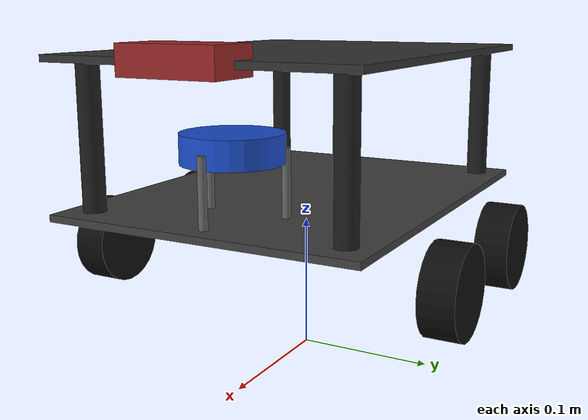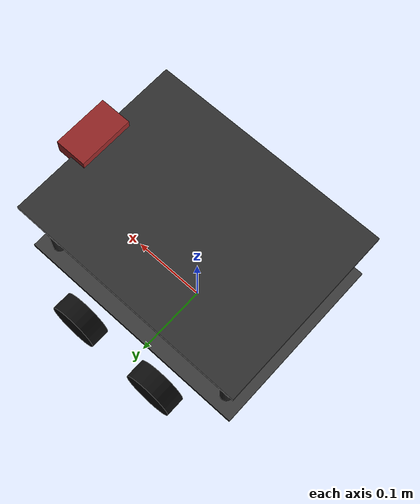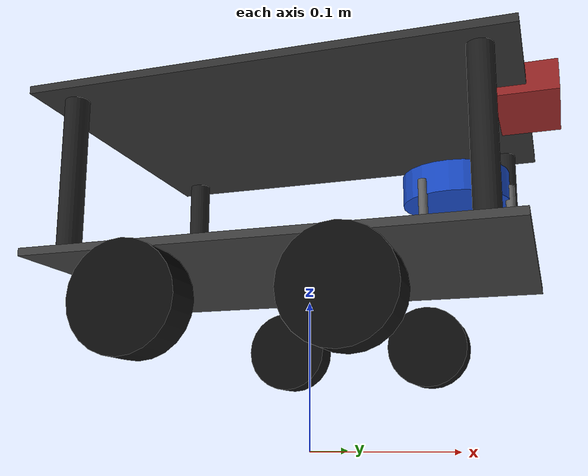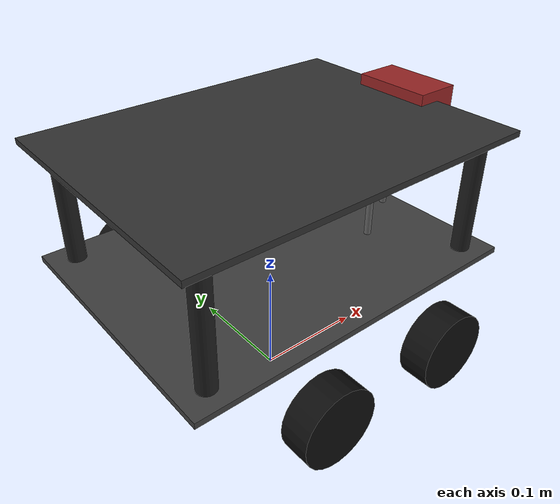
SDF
<?xml version="1.0"?>
<sdf version="1.6">
	<model name="diff_drive_robot">
		<pose>0 0 0.05 0 0 0</pose>

		<!-- ═══ lower plate ═══ -->
		<link name="lower_plate"><pose>0 0 0.071 0 0 0</pose>
			<inertial><mass>1.5</mass><inertia><ixx>0.01</ixx><ixy>0</ixy><ixz>0</ixz><iyy>0.01</iyy><iyz>0</iyz><izz>0.02</izz></inertia></inertial>
			<collision name="collision"><geometry><box><size>0.305 0.23 0.005</size></box></geometry></collision>
			<visual name="visual"><geometry><box><size>0.305 0.23 0.005</size></box></geometry><material><ambient>0.25 0.25 0.25 1</ambient></material></visual>
		</link>

		<!-- ═══ upper plate ═══ -->
		<link name="upper_plate"><pose>0 0 0.178 0 0 0</pose>
			<inertial><mass>0.5</mass><inertia><ixx>0.005</ixx><ixy>0</ixy><ixz>0</ixz><iyy>0.005</iyy><iyz>0</iyz><izz>0.01</izz></inertia></inertial>
			<collision name="collision"><geometry><box><size>0.305 0.23 0.005</size></box></geometry></collision>
			<visual name="visual"><geometry><box><size>0.305 0.23 0.005</size></box></geometry><material><ambient>0.2 0.2 0.2 1</ambient></material></visual>
		</link>
		<joint name="upper_plate_joint" type="fixed"><parent>lower_plate</parent><child>upper_plate</child></joint>

		<!-- ═══ 4 chassis pillars ═══ -->
		<link name="pillar_fl"><pose>0.13 0.095 0.1245 0 0 0</pose><inertial><mass>0.05</mass><inertia><ixx>1e-5</ixx><ixy>0</ixy><ixz>0</ixz><iyy>1e-5</iyy><iyz>0</iyz><izz>1e-5</izz></inertia></inertial><visual name="visual"><geometry><cylinder><radius>0.008</radius><length>0.107</length></cylinder></geometry><material><ambient>0.12 0.12 0.12 1</ambient></material></visual></link>
		<joint name="pillar_fl_joint" type="fixed"><parent>lower_plate</parent><child>pillar_fl</child></joint>
		<link name="pillar_fr"><pose>0.13 -0.095 0.1245 0 0 0</pose><inertial><mass>0.05</mass><inertia><ixx>1e-5</ixx><ixy>0</ixy><ixz>0</ixz><iyy>1e-5</iyy><iyz>0</iyz><izz>1e-5</izz></inertia></inertial><visual name="visual"><geometry><cylinder><radius>0.008</radius><length>0.107</length></cylinder></geometry><material><ambient>0.12 0.12 0.12 1</ambient></material></visual></link>
		<joint name="pillar_fr_joint" type="fixed"><parent>lower_plate</parent><child>pillar_fr</child></joint>
		<link name="pillar_rl"><pose>-0.13 0.095 0.1245 0 0 0</pose><inertial><mass>0.05</mass><inertia><ixx>1e-5</ixx><ixy>0</ixy><ixz>0</ixz><iyy>1e-5</iyy><iyz>0</iyz><izz>1e-5</izz></inertia></inertial><visual name="visual"><geometry><cylinder><radius>0.008</radius><length>0.107</length></cylinder></geometry><material><ambient>0.12 0.12 0.12 1</ambient></material></visual></link>
		<joint name="pillar_rl_joint" type="fixed"><parent>lower_plate</parent><child>pillar_rl</child></joint>
		<link name="pillar_rr"><pose>-0.13 -0.095 0.1245 0 0 0</pose><inertial><mass>0.05</mass><inertia><ixx>1e-5</ixx><ixy>0</ixy><ixz>0</ixz><iyy>1e-5</iyy><iyz>0</iyz><izz>1e-5</izz></inertia></inertial><visual name="visual"><geometry><cylinder><radius>0.008</radius><length>0.107</length></cylinder></geometry><material><ambient>0.12 0.12 0.12 1</ambient></material></visual></link>
		<joint name="pillar_rr_joint" type="fixed"><parent>lower_plate</parent><child>pillar_rr</child></joint>

		<!-- ═══ 4 wheels ═══ -->
		<link name="wheel_lf"><pose>0.06 0.1375 0.0323 0 0 0</pose><inertial><mass>0.05</mass><inertia><ixx>1e-5</ixx><ixy>0</ixy><ixz>0</ixz><iyy>1e-5</iyy><iyz>0</iyz><izz>1e-5</izz></inertia></inertial><collision name="collision"><pose>0 0 0 1.57 0 0</pose><geometry><cylinder><radius>0.0323</radius><length>0.025</length></cylinder></geometry></collision><visual name="visual"><pose>0 0 0 1.57 0 0</pose><geometry><cylinder><radius>0.0323</radius><length>0.025</length></cylinder></geometry><material><ambient>0.05 0.05 0.05 1</ambient></material></visual></link>
		<joint name="wheel_lf_joint" type="revolute"><parent>lower_plate</parent><child>wheel_lf</child><axis><xyz>0 1 0</xyz></axis></joint>
		<link name="wheel_lr"><pose>-0.06 0.1375 0.0323 0 0 0</pose><inertial><mass>0.05</mass><inertia><ixx>1e-5</ixx><ixy>0</ixy><ixz>0</ixz><iyy>1e-5</iyy><iyz>0</iyz><izz>1e-5</izz></inertia></inertial><collision name="collision"><pose>0 0 0 1.57 0 0</pose><geometry><cylinder><radius>0.0323</radius><length>0.025</length></cylinder></geometry></collision><visual name="visual"><pose>0 0 0 1.57 0 0</pose><geometry><cylinder><radius>0.0323</radius><length>0.025</length></cylinder></geometry><material><ambient>0.05 0.05 0.05 1</ambient></material></visual></link>
		<joint name="wheel_lr_joint" type="revolute"><parent>lower_plate</parent><child>wheel_lr</child><axis><xyz>0 1 0</xyz></axis></joint>
		<link name="wheel_rf"><pose>0.06 -0.1375 0.0323 0 0 0</pose><inertial><mass>0.05</mass><inertia><ixx>1e-5</ixx><ixy>0</ixy><ixz>0</ixz><iyy>1e-5</iyy><iyz>0</iyz><izz>1e-5</izz></inertia></inertial><collision name="collision"><pose>0 0 0 1.57 0 0</pose><geometry><cylinder><radius>0.0323</radius><length>0.025</length></cylinder></geometry></collision><visual name="visual"><pose>0 0 0 1.57 0 0</pose><geometry><cylinder><radius>0.0323</radius><length>0.025</length></cylinder></geometry><material><ambient>0.05 0.05 0.05 1</ambient></material></visual></link>
		<joint name="wheel_rf_joint" type="revolute"><parent>lower_plate</parent><child>wheel_rf</child><axis><xyz>0 1 0</xyz></axis></joint>
		<link name="wheel_rr"><pose>-0.06 -0.1375 0.0323 0 0 0</pose><inertial><mass>0.05</mass><inertia><ixx>1e-5</ixx><ixy>0</ixy><ixz>0</ixz><iyy>1e-5</iyy><iyz>0</iyz><izz>1e-5</izz></inertia></inertial><collision name="collision"><pose>0 0 0 1.57 0 0</pose><geometry><cylinder><radius>0.0323</radius><length>0.025</length></cylinder></geometry></collision><visual name="visual"><pose>0 0 0 1.57 0 0</pose><geometry><cylinder><radius>0.0323</radius><length>0.025</length></cylinder></geometry><material><ambient>0.05 0.05 0.05 1</ambient></material></visual></link>
		<joint name="wheel_rr_joint" type="revolute"><parent>lower_plate</parent><child>wheel_rr</child><axis><xyz>0 1 0</xyz></axis></joint>

		<!-- ═══ RPLIDAR A1: 3 pillars + cylinder (h=20mm, r=35mm) ═══ -->
		<link name="laser_frame"><pose>0.1025 0 0.121 0 0 0</pose>
			<inertial><mass>0.1</mass><inertia><ixx>1e-5</ixx><ixy>0</ixy><ixz>0</ixz><iyy>1e-5</iyy><iyz>0</iyz><izz>1e-5</izz></inertia></inertial>
			<visual name="visual"><geometry><cylinder><radius>0.035</radius><length>0.02</length></cylinder></geometry><material><ambient>0.1 0.3 0.8 1</ambient></material></visual>
			<sensor type="ray" name="laser"><update_rate>8</update_rate><ray><scan><horizontal><samples>360</samples><resolution>1</resolution><min_angle>-3.14</min_angle><max_angle>3.14</max_angle></horizontal></scan><range><min>0.15</min><max>12.0</max><resolution>0.001</resolution></range></ray><plugin name="laser_plugin" filename="libgazebo_ros_ray_sensor.so"><ros><remapping>~/out:=/scan</remapping></ros><output_type>sensor_msgs/LaserScan</output_type><frame_name>laser_frame</frame_name></plugin></sensor>
		</link>
		<joint name="laser_frame_joint" type="fixed"><parent>lower_plate</parent><child>laser_frame</child></joint>

		<!-- LiDAR support pillars (3×, 120° apart, height 50mm) -->
		<link name="lidar_pillar_0"><pose>0.1375 0 0.096 0 0 0</pose><inertial><mass>0.01</mass><inertia><ixx>1e-6</ixx><ixy>0</ixy><ixz>0</ixz><iyy>1e-6</iyy><iyz>0</iyz><izz>1e-6</izz></inertia></inertial><visual name="visual"><geometry><cylinder><radius>0.003</radius><length>0.05</length></cylinder></geometry><material><ambient>0.4 0.4 0.4 1</ambient></material></visual></link>
		<joint name="lidar_pillar_0_joint" type="fixed"><parent>lower_plate</parent><child>lidar_pillar_0</child></joint>
		<link name="lidar_pillar_120"><pose>0.085 0.0303 0.096 0 0 0</pose><inertial><mass>0.01</mass><inertia><ixx>1e-6</ixx><ixy>0</ixy><ixz>0</ixz><iyy>1e-6</iyy><iyz>0</iyz><izz>1e-6</izz></inertia></inertial><visual name="visual"><geometry><cylinder><radius>0.003</radius><length>0.05</length></cylinder></geometry><material><ambient>0.4 0.4 0.4 1</ambient></material></visual></link>
		<joint name="lidar_pillar_120_joint" type="fixed"><parent>lower_plate</parent><child>lidar_pillar_120</child></joint>
		<link name="lidar_pillar_240"><pose>0.085 -0.0303 0.096 0 0 0</pose><inertial><mass>0.01</mass><inertia><ixx>1e-6</ixx><ixy>0</ixy><ixz>0</ixz><iyy>1e-6</iyy><iyz>0</iyz><izz>1e-6</izz></inertia></inertial><visual name="visual"><geometry><cylinder><radius>0.003</radius><length>0.05</length></cylinder></geometry><material><ambient>0.4 0.4 0.4 1</ambient></material></visual></link>
		<joint name="lidar_pillar_240_joint" type="fixed"><parent>lower_plate</parent><child>lidar_pillar_240</child></joint>

		<!-- ═══ Astra Pro (red box on upper plate) ═══ -->
		<link name="camera_link"><pose>0.1525 0 0.180 0 0 0</pose>
			<inertial><mass>0.1</mass><inertia><ixx>1e-5</ixx><ixy>0</ixy><ixz>0</ixz><iyy>1e-5</iyy><iyz>0</iyz><izz>1e-5</izz></inertia></inertial>
			<visual name="visual"><geometry><box><size>0.04 0.07 0.02</size></box></geometry><material><ambient>0.6 0.15 0.15 1</ambient></material></visual>
		</link>
		<joint name="camera_joint" type="fixed"><parent>upper_plate</parent><child>camera_link</child></joint>

		<!-- ═══ IMU (inside, invisible) ═══ -->
		<link name="imu_link"><pose>0.0325 0 0.178 0 0 0</pose>
			<sensor type="imu" name="imu"><update_rate>200</update_rate><imu><angular_velocity><x><noise type="gaussian"><mean>0</mean><stddev>0.01</stddev></noise></x><y><noise type="gaussian"><mean>0</mean><stddev>0.01</stddev></noise></y><z><noise type="gaussian"><mean>0</mean><stddev>0.01</stddev></noise></z></angular_velocity><linear_acceleration><x><noise type="gaussian"><mean>0</mean><stddev>0.1</stddev></noise></x><y><noise type="gaussian"><mean>0</mean><stddev>0.1</stddev></noise></y><z><noise type="gaussian"><mean>0</mean><stddev>0.1</stddev></noise></z></linear_acceleration></imu><plugin name="imu_plugin" filename="libgazebo_ros_imu_sensor.so"><ros><remapping>~/out:=/imu</remapping></ros><frame_name>imu_link</frame_name></plugin></sensor>
		</link>
		<joint name="imu_joint" type="fixed"><parent>lower_plate</parent><child>imu_link</child></joint>

		<!-- ═══ Diff drive plugin ═══ -->
		<plugin name="diff_drive" filename="libgazebo_ros_diff_drive.so">
			<ros><remapping>cmd_vel:=/cmd_vel</remapping><remapping>odom:=/odom</remapping></ros>
			<update_rate>100</update_rate>
			<left_joint>wheel_lr_joint</left_joint>
			<right_joint>wheel_rr_joint</right_joint>
			<wheel_separation>0.275</wheel_separation>
			<wheel_diameter>0.0646</wheel_diameter>
			<max_wheel_torque>20</max_wheel_torque>
			<max_wheel_acceleration>10</max_wheel_acceleration>
			<publish_odom>true</publish_odom>
			<publish_odom_tf>true</publish_odom_tf>
			<publish_wheel_tf>false</publish_wheel_tf>
			<odometry_frame>odom</odometry_frame>
			<robot_base_frame>lower_plate</robot_base_frame>
		</plugin>

	</model>
</sdf>
